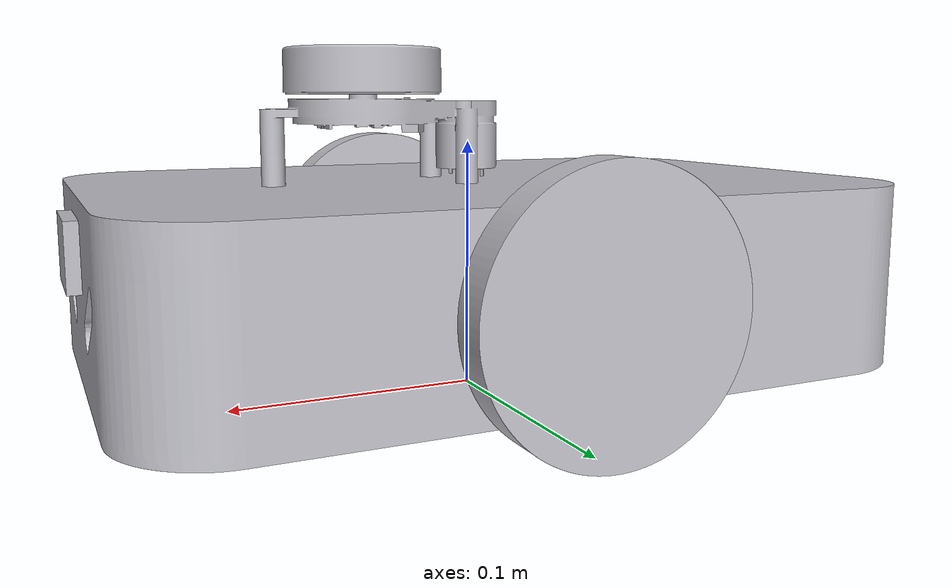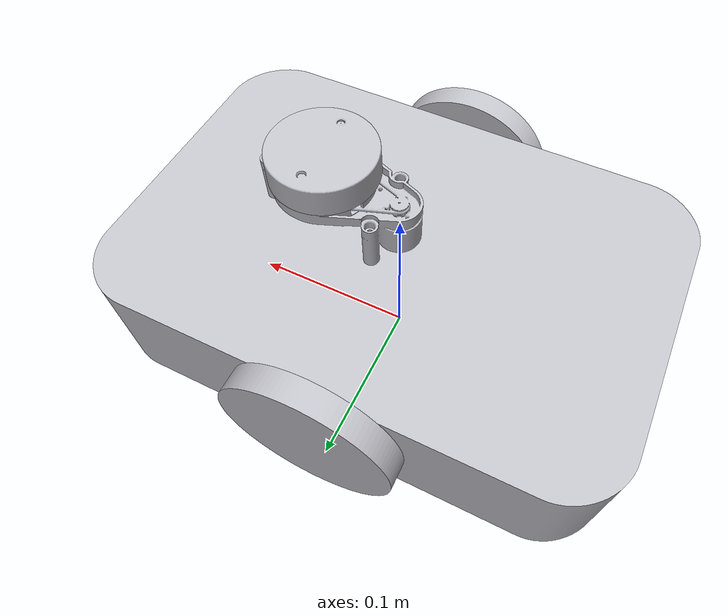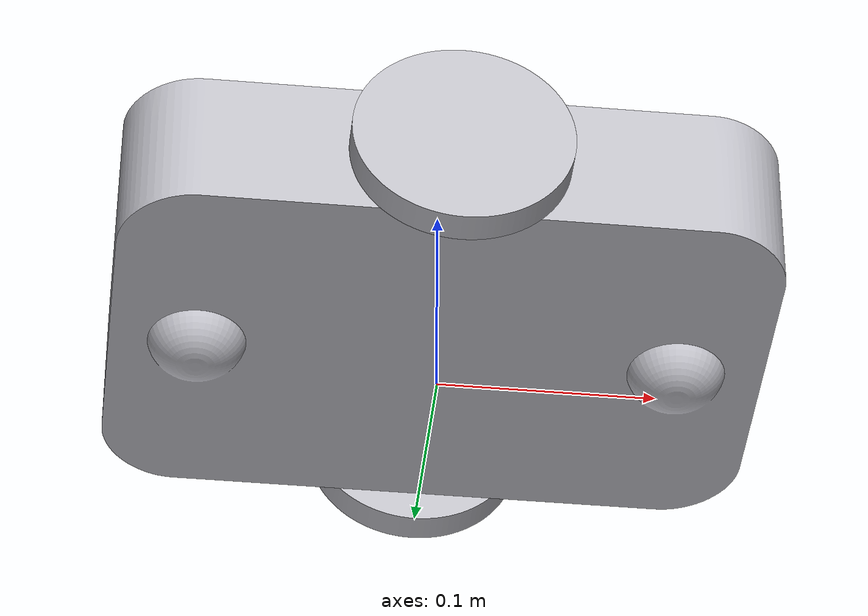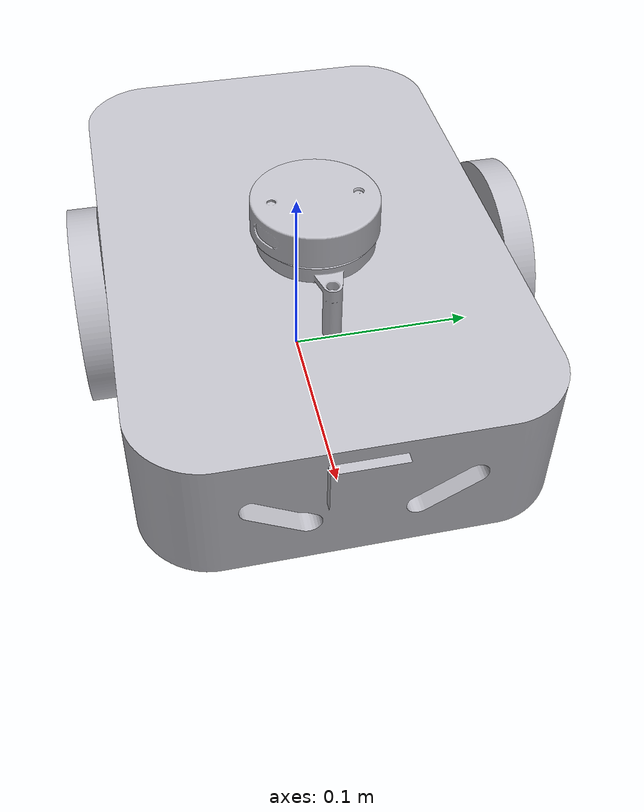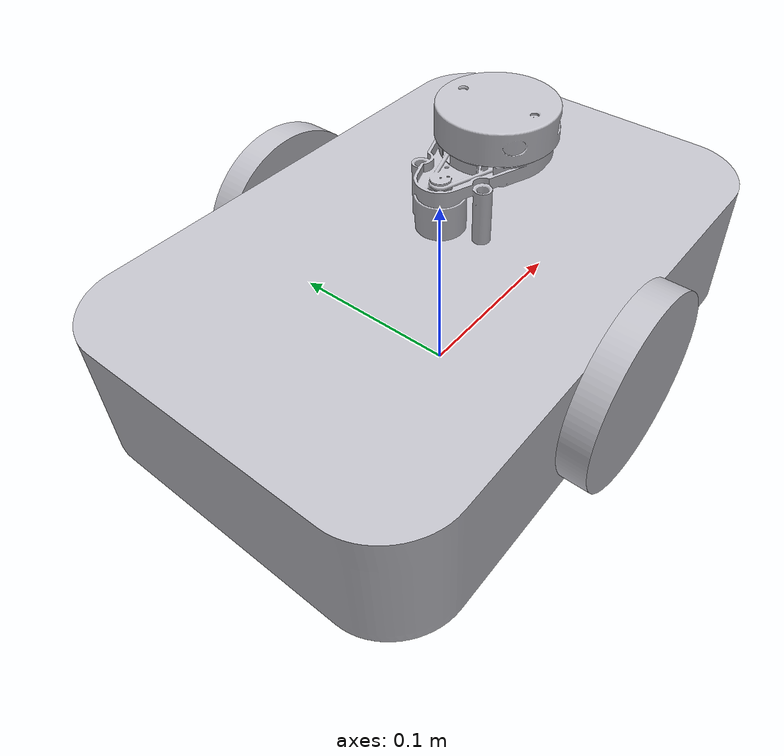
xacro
<?xml version="1.0" ?>
<robot name="agvrobot" xmlns:xacro="http://www.ros.org/wiki/xacro">

<xacro:include filename="$(find agvrobot_description)/urdf/materials.xacro" />
<xacro:include filename="$(find agvrobot_description)/urdf/agvrobot.trans" />
<xacro:include filename="$(find agvrobot_description)/urdf/agvrobot.gazebo" />
<link name = "dummy"/>

<link name="base_link">
  <inertial>
    <origin xyz="-0.00016302787182788484 2.3484594563553936e-10 0.04972091168623459" rpy="0 0 0"/>
    <mass value="32.55337355291384"/>
    <inertia ixx="0.118177" iyy="0.2506" izz="0.341546" ixy="0.0" iyz="0.0" ixz="-0.000103"/>
  </inertial>
  <visual>
    <origin xyz="0 0 0" rpy="0 0 0"/>
    <geometry>
      <mesh filename="package://agvrobot_description/meshes/base_link.stl" scale="0.001 0.001 0.001"/>
    </geometry>
    <material name="silver"/>
  </visual>
  <collision>
    <origin xyz="0 0 0" rpy="0 0 0"/>
    <geometry>
      <mesh filename="package://agvrobot_description/meshes/base_link.stl" scale="0.001 0.001 0.001"/>
    </geometry>
  </collision>
</link>

<link name="lidar_top_1">
  <inertial>
    <origin xyz="2.5673907444456745e-16 2.5216220915968892e-08 0.023000000000000007" rpy="0 0 0"/>
    <mass value="0.34103550409015776"/>
    <inertia ixx="8.1e-05" iyy="8.1e-05" izz="0.000147" ixy="0.0" iyz="-0.0" ixz="0.0"/>
  </inertial>
  <visual>
    <origin xyz="-0.0442 0.000404 -0.104" rpy="0 0 0"/>
    <geometry>
      <mesh filename="package://agvrobot_description/meshes/lidar_top_1.stl" scale="0.001 0.001 0.001"/>
    </geometry>
    <material name="silver"/>
  </visual>
  <collision>
    <origin xyz="-0.0442 0.000404 -0.104" rpy="0 0 0"/>
    <geometry>
      <mesh filename="package://agvrobot_description/meshes/lidar_top_1.stl" scale="0.001 0.001 0.001"/>
    </geometry>
  </collision>
</link>

<link name="lidar_bottom_1">
  <inertial>
    <origin xyz="0.02594418444403688 -8.797207156127458e-05 0.014919792402114343" rpy="0 0 0"/>
    <mass value="0.032841802013098984"/>
    <inertia ixx="1e-05" iyy="2.5e-05" izz="2.9e-05" ixy="0.0" iyz="0.0" ixz="-2e-06"/>
  </inertial>
  <visual>
    <origin xyz="-0.0 -0.0 -0.085" rpy="0 0 0"/>
    <geometry>
      <mesh filename="package://agvrobot_description/meshes/lidar_bottom_1.stl" scale="0.001 0.001 0.001"/>
    </geometry>
    <material name="silver"/>
  </visual>
  <collision>
    <origin xyz="-0.0 -0.0 -0.085" rpy="0 0 0"/>
    <geometry>
      <mesh filename="package://agvrobot_description/meshes/lidar_bottom_1.stl" scale="0.001 0.001 0.001"/>
    </geometry>
  </collision>
</link>

<link name="right_wheel_1">
  <inertial>
    <origin xyz="9.650038500203382e-18 -0.007499999999999993 -1.3877787807814457e-17" rpy="0 0 0"/>
    <mass value="0.9248063374004951"/>
    <inertia ixx="0.000595" iyy="0.001156" izz="0.000595" ixy="0.0" iyz="0.0" ixz="-0.0"/>
  </inertial>
  <visual>
    <origin xyz="-0.0 0.1 -0.05" rpy="0 0 0"/>
    <geometry>
      <mesh filename="package://agvrobot_description/meshes/right_wheel_1.stl" scale="0.001 0.001 0.001"/>
    </geometry>
    <material name="silver"/>
  </visual>
  <collision>
    <origin xyz="-0.0 0.1 -0.05" rpy="0 0 0"/>
    <geometry>
      <mesh filename="package://agvrobot_description/meshes/right_wheel_1.stl" scale="0.001 0.001 0.001"/>
    </geometry>
  </collision>
</link>

<link name="left_wheel_1">
  <inertial>
    <origin xyz="2.7413606894205887e-17 0.007499999999999993 6.938893903907228e-18" rpy="0 0 0"/>
    <mass value="0.9248063374004951"/>
    <inertia ixx="0.000595" iyy="0.001156" izz="0.000595" ixy="-0.0" iyz="0.0" ixz="0.0"/>
  </inertial>
  <visual>
    <origin xyz="-0.0 -0.1 -0.05" rpy="0 0 0"/>
    <geometry>
      <mesh filename="package://agvrobot_description/meshes/left_wheel_1.stl" scale="0.001 0.001 0.001"/>
    </geometry>
    <material name="silver"/>
  </visual>
  <collision>
    <origin xyz="-0.0 -0.1 -0.05" rpy="0 0 0"/>
    <geometry>
      <mesh filename="package://agvrobot_description/meshes/left_wheel_1.stl" scale="0.001 0.001 0.001"/>
    </geometry>
  </collision>
</link>

<joint name="dummy_joint" type= "fixed">
  <parent link="base_link"/>
  <child link="dummy"/>
  <origin
      xyz="0 0 0"
      rpy="0 0 0" />
</joint>

<joint name="right_joint" type="continuous">
  <origin xyz="0.0 -0.1 0.05" rpy="0 0 0"/>
  <parent link="dummy"/>
  <child link="right_wheel_1"/>
  <axis xyz="0.0 1.0 0.0"/>
</joint>

<joint name="left_joint" type="continuous">
  <origin xyz="0.0 0.1 0.05" rpy="0 0 0"/>
  <parent link="dummy"/>
  <child link="left_wheel_1"/>
  <axis xyz="0.0 1.0 0.0"/>
</joint>

<joint name="lidar_base" type="fixed">
  <origin xyz="0.0 0.0 0.085" rpy="0 0 0"/>
  <parent link="dummy"/>
  <child link="lidar_bottom_1"/>
</joint>

<joint name="lidar_joint" type="continuous">
  <origin xyz="0.0442 -0.000404 0.019" rpy="0 0 0"/>
  <parent link="lidar_bottom_1"/>
  <child link="lidar_top_1"/>
  <axis xyz="0.0 0.0 1.0"/>
</joint>

</robot>

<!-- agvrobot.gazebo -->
<robot name="agvrobot" xmlns:xacro="http://www.ros.org/wiki/xacro" >

<xacro:property name="body_color" value="Gazebo/Silver" />

<gazebo>
  <plugin name="control" filename="libgazebo_ros_control.so"/>
</gazebo>
<gazebo reference="base_link">
  <material>${body_color}</material>
  <mu1>0.1</mu1>
  <mu2>0.1</mu2>
  <selfCollide>true</selfCollide>
  <gravity>true</gravity>
</gazebo>

<gazebo reference="lidar_top_1">
  <material>${body_color}</material>
  <mu1>0.2</mu1>
  <mu2>0.2</mu2>
  <selfCollide>true</selfCollide>
</gazebo>

<gazebo reference="lidar_bottom_1">
  <material>${body_color}</material>
  <mu1>0.2</mu1>
  <mu2>0.2</mu2>
  <selfCollide>true</selfCollide>
</gazebo>

<gazebo reference="right_wheel_1">
  <material>${body_color}</material>
  <mu1>15000.0</mu1> <!-- Reduced friction values -->
  <mu2>15000.0</mu2> <!-- Reduced friction values -->
  <selfCollide>true</selfCollide>
</gazebo>

<gazebo reference="left_wheel_1">
  <material>${body_color}</material>
  <mu1>15000.0</mu1> <!-- Reduced friction values -->
  <mu2>15000.0</mu2> <!-- Reduced friction values -->
  <selfCollide>true</selfCollide>
</gazebo>

<gazebo>
  <plugin name="differential_drive_controller" filename="libgazebo_ros_diff_drive.so">
    <updateRate>100</updateRate>
    <leftJoint>left_joint</leftJoint>
    <rightJoint>right_joint</rightJoint>
    <wheelSeparation>2</wheelSeparation> <!-- Check this value -->
    <wheelDiameter>1</wheelDiameter>     <!-- Check this value -->
    <wheelAcceleration>1.0</wheelAcceleration>
    <wheelTorque>50</wheelTorque>
    <commandTopic>cmd_vel</commandTopic>
    <odometryTopic>odom</odometryTopic>
    <odometryFrame>odom</odometryFrame>
    <robotBaseFrame>base_link</robotBaseFrame>
    <odometrySource>0</odometrySource> <!-- Use ENCODER -->
    <publishWheelTF>true</publishWheelTF>
    <publishOdom>true</publishOdom>
    <publishWheelJointState>true</publishWheelJointState>
    <legacyMode>false</legacyMode>
  </plugin>
</gazebo>

<gazebo reference="lidar_top_1">
  <sensor type="ray" name="head_hokuyo_sensor">
    <pose>0 0 0 0 0 0</pose>
    <visualize>true</visualize>
    <update_rate>20</update_rate>
    <ray>
      <scan>
        <horizontal>
          <samples>720</samples>
          <resolution>1</resolution>
          <min_angle>-3.14</min_angle>
          <max_angle>3.14</max_angle>
        </horizontal>
      </scan>
      <range>
        <min>0.5</min>
        <max>20.0</max>
        <resolution>0.01</resolution>
      </range>
      <noise>
        <type>gaussian</type>
        <mean>0.0</mean>
        <stddev>0.01</stddev>
      </noise>
    </ray>
    <plugin name="gazebo_ros_head_hokuyo_controller" filename="libgazebo_ros_laser.so">
      <topicName>/rrbot/laser/scan</topicName>
      <frameName>lidar_top_1</frameName>
    </plugin>
  </sensor>
</gazebo>

</robot>
